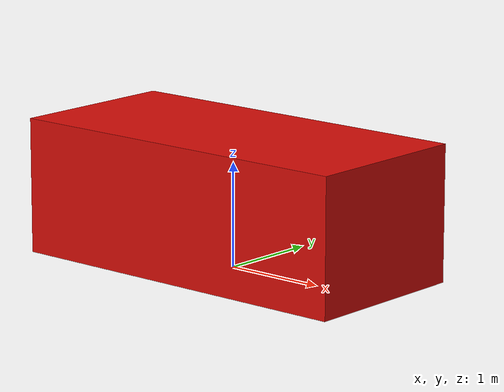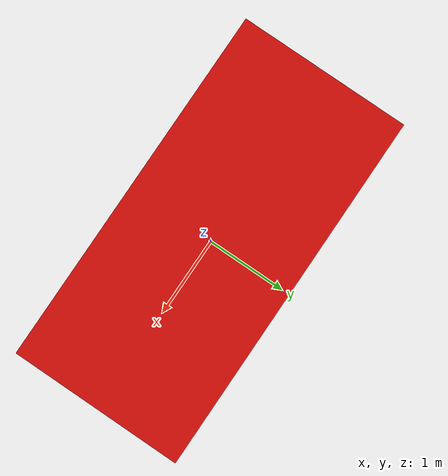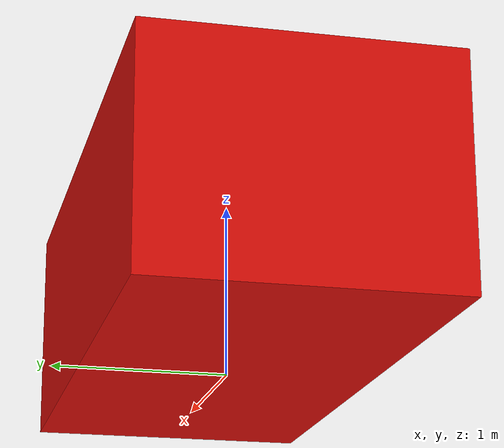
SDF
<?xml version="1.0"?><sdf version="1.8"><model name="inspection_car"><static>true</static><link name="body"><pose>0 0 0.65 0 0 0</pose><collision name="c"><geometry><box><size>3.6 1.7 1.3</size></box></geometry></collision><visual name="v"><geometry><box><size>3.6 1.7 1.3</size></box></geometry><material><ambient>0.85 0.05 0.03 1</ambient><diffuse>0.85 0.05 0.03 1</diffuse></material></visual></link></model></sdf>
